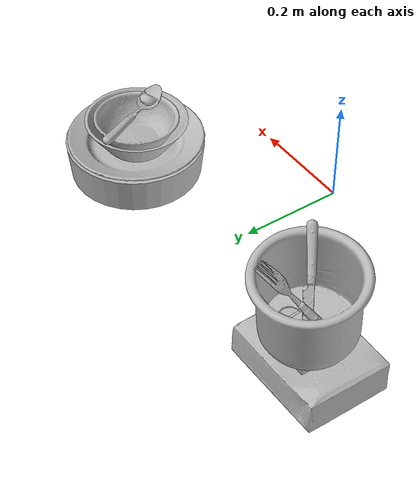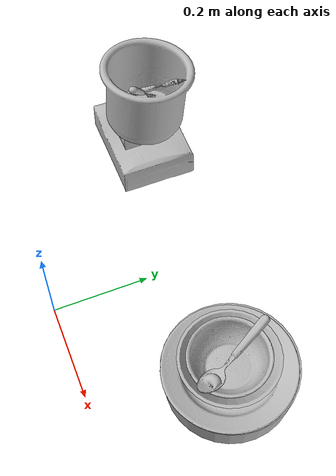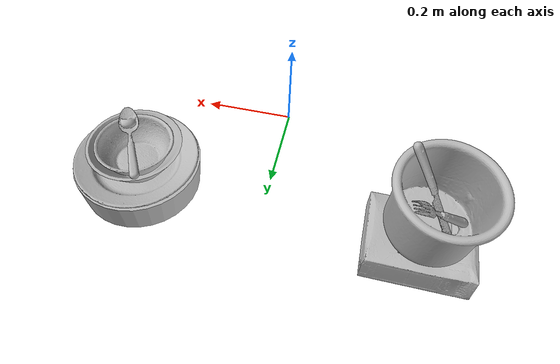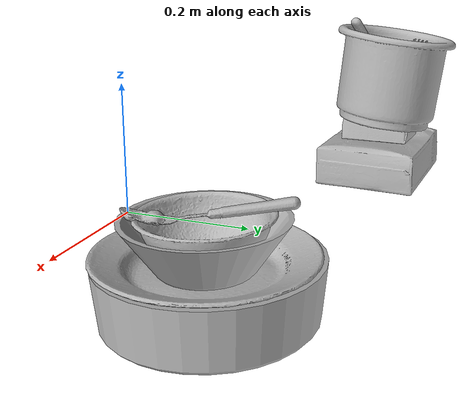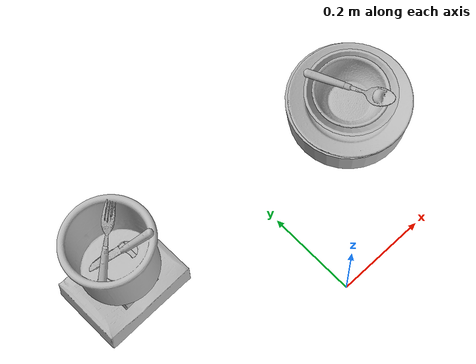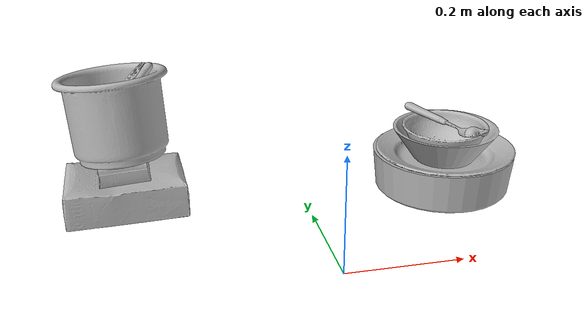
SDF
<?xml version="1.0" ?>
<sdf version="1.4">

  <world name="default">

    <light name="light1" type="point">

      <pose>0 0 1 0 0 0</pose>

      <diffuse>3 3 3 1</diffuse>

      <specular>3 3 3 1</specular>

    </light>

    <light name="light2" type="point">

      <pose>0 0.5 2 0 0 0</pose>

      <diffuse>1 1 1 1</diffuse>

      <specular>1 1 1 1</specular>

    </light>

    <light name="light3" type="point">

      <pose>0 0.5 2 0 0 0</pose>

      <diffuse>3 3 3 1</diffuse>

      <specular>3 3 3 1</specular>

    </light>

    <scene>

      <ambient>0.7 0.7 0.7</ambient>

    </scene>

    <model name="plate1">

      <link name="link_plate1">

        <collision name="default">

          <geometry>

            <mesh>

              <uri>model://pan_tefal/collision_meshes/collision.obj</uri>

              <scale>1.0 1.0 1.0</scale>

            </mesh>

          </geometry>

          <surface>

            <friction>

              <ode>

                <mu>0.5</mu>

                <mu2>0.5</mu2>

              </ode>

            </friction>

          </surface>

        </collision>

        <visual name="default">

          <geometry>

            <mesh>

              <uri>model://pan_tefal/visual_meshes/visual.dae</uri>

              <scale>1.0 1.0 1.0</scale>

            </mesh>

          </geometry>

        </visual>

        <inertial>

          <mass>0.7050602436065674</mass>

          <pose>-0.00018002082651946694 3.279098018538207e-05 -0.008514933288097382 0.0008190340203057913 -0.0003301288692481796 -0.3318720847028622</pose>

          <inertia>

            <ixx>0.0048669963</ixx>

            <iyy>0.0048983735</iyy>

            <izz>0.008959204</izz>

            <ixy>0</ixy>

            <ixz>0</ixz>

            <iyz>0</iyz>

          </inertia>

        </inertial>

      </link>

      <pose>0.27225810289382935 0.26888900995254517 0.03796099126338959 -0.0005274220718558247 -0.0004986576139612172 0.012582498133855384</pose>

    </model>

    <model name="plate2">

      <link name="link_plate2">

        <collision name="default">

          <geometry>

            <mesh>

              <uri>model://plate/collision_meshes/collision.obj</uri>

              <scale>1.0 1.0 1.0</scale>

            </mesh>

          </geometry>

          <surface>

            <friction>

              <ode>

                <mu>0.5</mu>

                <mu2>0.5</mu2>

              </ode>

            </friction>

          </surface>

        </collision>

        <visual name="default">

          <geometry>

            <mesh>

              <uri>model://plate/visual_meshes/visual.dae</uri>

              <scale>1.0 1.0 1.0</scale>

            </mesh>

          </geometry>

        </visual>

        <inertial>

          <mass>0.2442774623632431</mass>

          <pose>-0.0006044568726792932 0.0002782584633678198 -0.0010561984963715076 0.0022187778178748897 -0.0032254919076997847 0.45261061169843664</pose>

          <inertia>

            <ixx>0.0011427345</ixx>

            <iyy>0.001131805</iyy>

            <izz>0.002235018</izz>

            <ixy>0</ixy>

            <ixz>0</ixz>

            <iyz>0</iyz>

          </inertia>

        </inertial>

      </link>

      <pose>0.27423036098480225 0.26612356305122375 0.06943533569574356 -0.006775587422943965 -0.0028629419623181127 -0.020394612136836014</pose>

    </model>

    <model name="bowl1">

      <link name="link_bowl1">

        <collision name="default">

          <geometry>

            <mesh>

              <uri>model://bowl_a/collision_meshes/collision.obj</uri>

              <scale>1.0 1.0 1.0</scale>

            </mesh>

          </geometry>

          <surface>

            <friction>

              <ode>

                <mu>0.5</mu>

                <mu2>0.5</mu2>

              </ode>

            </friction>

          </surface>

        </collision>

        <visual name="default">

          <geometry>

            <mesh>

              <uri>model://bowl_a/visual_meshes/visual.dae</uri>

              <scale>1.0 1.0 1.0</scale>

            </mesh>

          </geometry>

        </visual>

        <inertial>

          <mass>0.4025156497955322</mass>

          <pose>0.00027867371682077646 4.731032458948903e-05 -0.0013765298062935472 -0.00098054011869292 -0.0010938175729232503 -0.19123339485915475</pose>

          <inertia>

            <ixx>0.0011459808</ixx>

            <iyy>0.0011530165</iyy>

            <izz>0.0020381706</izz>

            <ixy>0</ixy>

            <ixz>0</ixz>

            <iyz>0</iyz>

          </inertia>

        </inertial>

      </link>

      <pose>0.27227696776390076 0.26514536142349243 0.09046334028244019 0.0058785611248694854 -0.0028511080103237616 -0.030105162893682407</pose>

    </model>

    <model name="bowl2">

      <link name="link_bowl2">

        <collision name="default">

          <geometry>

            <mesh>

              <uri>model://bowl/collision_meshes/collision.obj</uri>

              <scale>1.0 1.0 1.0</scale>

            </mesh>

          </geometry>

          <surface>

            <friction>

              <ode>

                <mu>0.5</mu>

                <mu2>0.5</mu2>

              </ode>

            </friction>

          </surface>

        </collision>

        <visual name="default">

          <geometry>

            <mesh>

              <uri>model://bowl/visual_meshes/visual.dae</uri>

              <scale>1.0 1.0 1.0</scale>

            </mesh>

          </geometry>

        </visual>

        <inertial>

          <mass>0.04694162309169769</mass>

          <pose>0.00020445318659767509 -0.001030211104080081 -0.0008042642730288208 -0.01576400215318024 0.014546874726031786 0.7140460761636136</pose>

          <inertia>

            <ixx>0.0001078286</ixx>

            <iyy>0.000105419305</iyy>

            <izz>0.00018140484</izz>

            <ixy>0</ixy>

            <ixz>0</ixz>

            <iyz>0</iyz>

          </inertia>

        </inertial>

      </link>

      <pose>0.27163973450660706 0.2654856741428375 0.09964282810688019 0.02223400659025009 -0.0024024536001707626 -0.03205148551870775</pose>

    </model>

    <model name="silverware1">

      <link name="link_silverware1">

        <collision name="default">

          <geometry>

            <mesh>

              <uri>model://spoon/collision_meshes/collision.obj</uri>

              <scale>1.0 1.0 1.0</scale>

            </mesh>

          </geometry>

          <surface>

            <friction>

              <ode>

                <mu>0.5</mu>

                <mu2>0.5</mu2>

              </ode>

            </friction>

          </surface>

        </collision>

        <visual name="default">

          <geometry>

            <mesh>

              <uri>model://spoon/visual_meshes/visual.dae</uri>

              <scale>1.0 1.0 1.0</scale>

            </mesh>

          </geometry>

        </visual>

        <inertial>

          <mass>0.03710600733757019</mass>

          <pose>-0.005526318680495024 -0.0016034168656915426 -0.0007271650829352438 0.03521602429168162 -0.03906583039209626 0.006150612964611125</pose>

          <inertia>

            <ixx>2.0638956e-06</ixx>

            <iyy>0.00014118708</iyy>

            <izz>0.00014220492</izz>

            <ixy>0</ixy>

            <ixz>0</ixz>

            <iyz>0</iyz>

          </inertia>

        </inertial>

      </link>

      <pose>0.27609390020370483 0.2733787000179291 0.1305345594882965 0.094349567712383 0.08896806750241902 -1.0855742957027084</pose>

    </model>

    <model name="box1">

      <link name="link_box1">

        <collision name="default">

          <geometry>

            <mesh>

              <uri>model://cracker_box/collision_meshes/collision.obj</uri>

              <scale>1.0 1.0 1.0</scale>

            </mesh>

          </geometry>

          <surface>

            <friction>

              <ode>

                <mu>0.5</mu>

                <mu2>0.5</mu2>

              </ode>

            </friction>

          </surface>

        </collision>

        <visual name="default">

          <geometry>

            <mesh>

              <uri>model://cracker_box/visual_meshes/visual.dae</uri>

              <scale>1.0 1.0 1.0</scale>

            </mesh>

          </geometry>

        </visual>

        <inertial>

          <mass>2.252173662185669</mass>

          <pose>0.0009464137838222086 0.0002543425071053207 -0.0017029535956680775 -0.000316207513865998 -0.011106489600465836 0.0025467954670329632</pose>

          <inertia>

            <ixx>0.0057285246</ixx>

            <iyy>0.00945892</iyy>

            <izz>0.013498746</izz>

            <ixy>0</ixy>

            <ixz>0</ixz>

            <iyz>0</iyz>

          </inertia>

        </inertial>

      </link>

      <pose>-0.3202360272407532 0.31054624915122986 0.0364789180457592 -0.012274468798307035 -0.007667839102520258 0.0006585499960226352</pose>

    </model>

    <model name="box2">

      <link name="link_box2">

        <collision name="default">

          <geometry>

            <mesh>

              <uri>model://pudding_box/collision_meshes/collision.obj</uri>

              <scale>1.0 1.0 1.0</scale>

            </mesh>

          </geometry>

          <surface>

            <friction>

              <ode>

                <mu>0.5</mu>

                <mu2>0.5</mu2>

              </ode>

            </friction>

          </surface>

        </collision>

        <visual name="default">

          <geometry>

            <mesh>

              <uri>model://pudding_box/visual_meshes/visual.dae</uri>

              <scale>1.0 1.0 1.0</scale>

            </mesh>

          </geometry>

        </visual>

        <inertial>

          <mass>0.38795164227485657</mass>

          <pose>0.0004894821904599667 0.0008067885646596551 -0.0005188827635720372 0.005213102258195884 -0.006603798723254801 0.020079825158131615</pose>

          <inertia>

            <ixx>0.00043855933</ixx>

            <iyy>0.00029506587</iyy>

            <izz>0.0006476475</izz>

            <ixy>0</ixy>

            <ixz>0</ixz>

            <iyz>0</iyz>

          </inertia>

        </inertial>

      </link>

      <pose>-0.3223080039024353 0.31022730469703674 0.08546748757362366 3.1285863584721967 -0.07896541111294678 0.01588611486377322</pose>

    </model>

    <model name="cup1">

      <link name="link_cup1">

        <collision name="default">

          <geometry>

            <mesh>

              <uri>model://i_cups/collision_meshes/collision.obj</uri>

              <scale>2.0 2.0 2.0</scale>

            </mesh>

          </geometry>

          <surface>

            <friction>

              <ode>

                <mu>0.5</mu>

                <mu2>0.5</mu2>

              </ode>

            </friction>

          </surface>

        </collision>

        <visual name="default">

          <geometry>

            <mesh>

              <uri>model://i_cups/visual_meshes/visual.dae</uri>

              <scale>2.0 2.0 2.0</scale>

            </mesh>

          </geometry>

        </visual>

        <inertial>

          <mass>0.8781275153160095</mass>

          <pose>0.00022480404004454613 0.0003359464171808213 -0.0017158013070002198 -0.028983801808433914 -0.03987279960401974 -0.34589629987983705</pose>

          <inertia>

            <ixx>0.004863122</ixx>

            <iyy>0.004905971</iyy>

            <izz>0.005435325</izz>

            <ixy>0</ixy>

            <ixz>0</ixz>

            <iyz>0</iyz>

          </inertia>

        </inertial>

      </link>

      <pose>-0.3250397741794586 0.3241250216960907 0.1724061369895935 -0.11309133764014712 -0.07569870134458734 -0.02413344200086356</pose>

    </model>

    <model name="silverware2">

      <link name="link_silverware2">

        <collision name="default">

          <geometry>

            <mesh>

              <uri>model://fork/collision_meshes/collision.obj</uri>

              <scale>1.0 1.0 1.0</scale>

            </mesh>

          </geometry>

          <surface>

            <friction>

              <ode>

                <mu>0.5</mu>

                <mu2>0.5</mu2>

              </ode>

            </friction>

          </surface>

        </collision>

        <visual name="default">

          <geometry>

            <mesh>

              <uri>model://fork/visual_meshes/visual.dae</uri>

              <scale>1.0 1.0 1.0</scale>

            </mesh>

          </geometry>

        </visual>

        <inertial>

          <mass>0.027322283014655113</mass>

          <pose>-0.02957003377377987 0.0004658822435885668 0.0003218860656488687 -0.013551502868568713 -0.01097783467120204 0.01445389601768567</pose>

          <inertia>

            <ixx>9.578007e-07</ixx>

            <iyy>7.133063e-05</iyy>

            <izz>7.175903e-05</izz>

            <ixy>0</ixy>

            <ixz>0</ixz>

            <iyz>0</iyz>

          </inertia>

        </inertial>

      </link>

      <pose>-0.32980436086654663 0.34333866834640503 0.1829405575990677 2.8551558421068317 -0.7740514498102266 0.6535794638071909</pose>

    </model>

    <model name="silverware3">

      <link name="link_silverware3">

        <collision name="default">

          <geometry>

            <mesh>

              <uri>model://knife/collision_meshes/collision.obj</uri>

              <scale>1.0 1.0 1.0</scale>

            </mesh>

          </geometry>

          <surface>

            <friction>

              <ode>

                <mu>0.5</mu>

                <mu2>0.5</mu2>

              </ode>

            </friction>

          </surface>

        </collision>

        <visual name="default">

          <geometry>

            <mesh>

              <uri>model://knife/visual_meshes/visual.dae</uri>

              <scale>1.0 1.0 1.0</scale>

            </mesh>

          </geometry>

        </visual>

        <inertial>

          <mass>0.036400385200977325</mass>

          <pose>-0.02378525584936142 0.0015275126788765192 5.0620175898075104e-05 0.07305876248658423 0.017248417790611748 -0.007409819472147862</pose>

          <inertia>

            <ixx>1.0331904e-06</ixx>

            <iyy>0.00013984439</iyy>

            <izz>0.00014017712</izz>

            <ixy>0</ixy>

            <ixz>0</ixz>

            <iyz>0</iyz>

          </inertia>

        </inertial>

      </link>

      <pose>-0.31397733092308044 0.31717774271965027 0.1922074258327484 -0.09628620986557239 0.9018458554219843 2.4934592799037993</pose>

    </model>

  </world>

</sdf>
